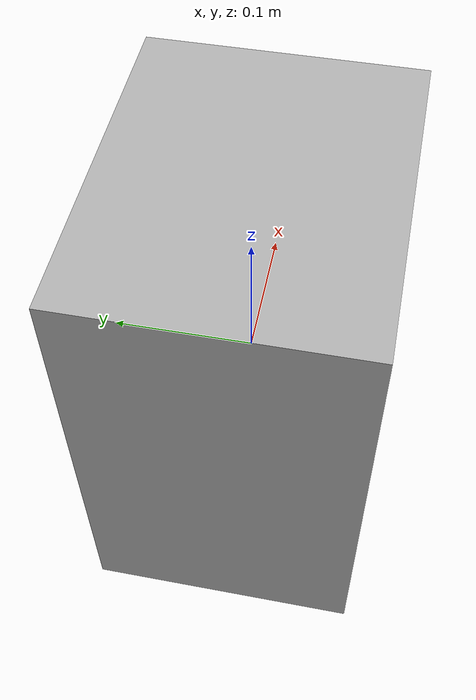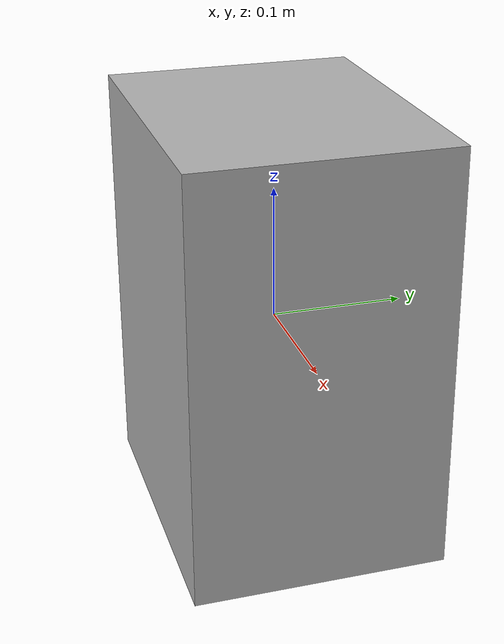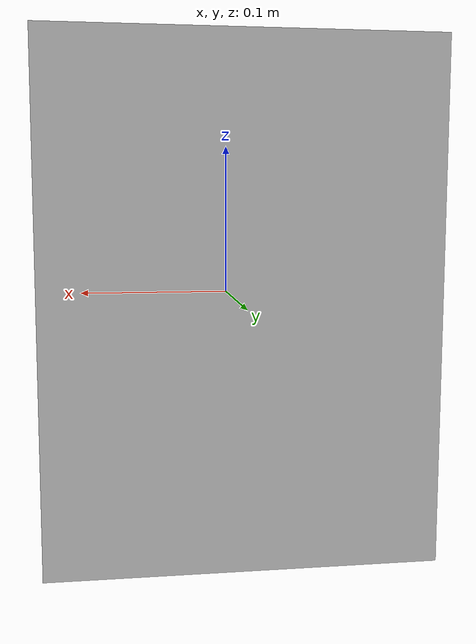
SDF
<?xml version="1.0"?>
<!-- Componente "carro" de la biblioteca del contrato 2.0. Origen = centro geométrico. -->
<sdf version="1.9"><model name='carro'><static>true</static><link name='link'><collision name='c'><geometry><box><size>0.24 0.19 0.32</size></box></geometry></collision><visual name='v'><geometry><box><size>0.24 0.19 0.32</size></box></geometry><material><ambient>0.7 0.7 0.7 1</ambient><diffuse>0.7 0.7 0.7 1</diffuse></material></visual></link></model></sdf>
